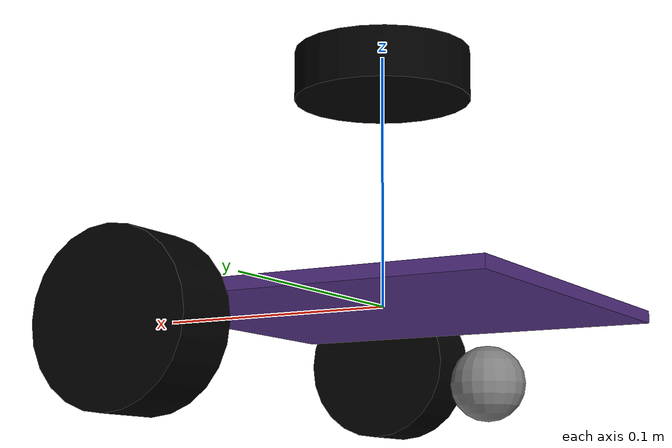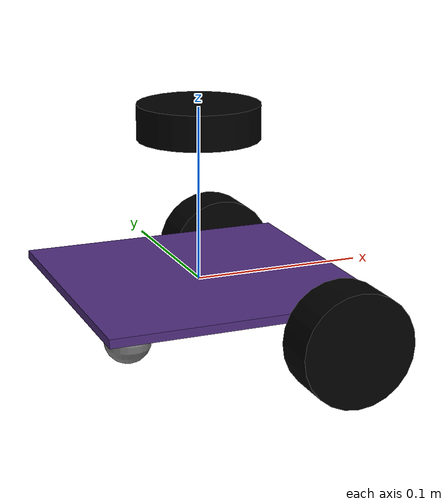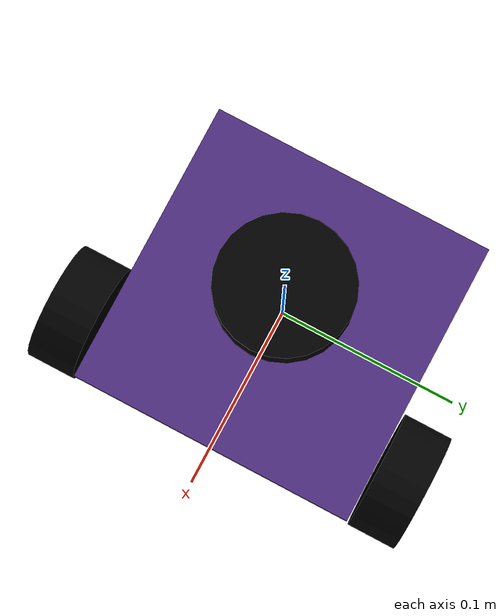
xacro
<?xml version="1.0"?>
<robot xmlns:xacro="http://www.ros.org/wiki/xacro" name="homeplater">
    <material name="black">
        <color rgba="0 0 0 1"/>
    </material>
    <material name="purple">
        <color rgba="0.3098 0.1765 0.4980 1" />
    </material>
    <material name="gray">
        <color rgba="0.5 0.5 0.5 1" />
    </material>

    <!-- base properties -->
    <xacro:property name="base_depth" value="0.16" />
    <xacro:property name="base_width" value="0.16" />
    <xacro:property name="base_height" value="0.005" />
    <xacro:property name="base_mass" value="0.2" />
    <!-- wheel properties -->
    <xacro:property name="wheel_xoffset" value="0.048" />
    <xacro:property name="wheel_yoffset" value="0.095" />
    <xacro:property name="wheel_zoffset" value="-0.013" />
    <xacro:property name="wheel_radius" value="0.0325" />
    <xacro:property name="wheel_width" value="0.027" />
    <xacro:property name="wheel_mass" value="0.032" />
    <!-- caster properties -->
    <xacro:property name="caster_xoffset" value="-0.044" />
    <xacro:property name="caster_radius" value="0.014" />
    <xacro:property name="caster_mass" value="0.05" />
    <!-- lidar properties -->
    <xacro:property name="lidar_radius" value="0.035" />
    <xacro:property name="lidar_height" value="0.02" />
    <xacro:property name="lidar_zoff" value="0.08" />
    <xacro:property name="lidar_mass" value="0.17" />

    <!-- inertial macro -->
    <xacro:macro name="box_inertia" params="m d w h">
        <inertial>
            <mass value="${m}" />
            <inertia ixx="${(m/12) * (h*h + w*w)}" ixy="0.0" ixz="0.0" iyy="${(m/12) * (d*d + h*h)}" iyz="0.0" izz="${(m/12) * (w*w + d*d)}" />
        </inertial>
    </xacro:macro>

    <xacro:macro name="cylinder_inertia" params="m r h">
        <inertial>
            <mass value="${m}" />
            <inertia ixx="${(m/12) * (3*r*r + h*h)}" ixy="0" ixz="0" iyy="${(m/12) * (3*r*r + h*h)}" iyz="0" izz="${(m/2) * (r*r)}" />
        </inertial>
    </xacro:macro>

    <xacro:macro name="sphere_inertia" params="m r">
        <inertial>
            <mass value="${m}" />
            <inertia ixx="${(2/5) * m * (r*r)}" ixy="0.0" ixz="0.0" iyy="${(2/5) * m * (r*r)}" iyz="0.0" izz="${(2/5) * m * (r*r)}" />
        </inertial>
    </xacro:macro>

    <!-- Wheel macro -->
    <xacro:macro name="wheel" params="prefix y_reflect">
        <joint name="${prefix}_joint" type="continuous">
            <parent link="base_link" />
            <child link="${prefix}_link" />
            <origin xyz="${wheel_xoffset} ${y_reflect*wheel_yoffset} ${wheel_zoffset}" rpy="${-pi/2} 0 0" />
            <axis xyz="0 0 1" />
        </joint>

        <link name="${prefix}_link">
            <visual>
                <geometry>
                    <cylinder radius="${wheel_radius}" length="${wheel_width}" />
                </geometry>
                <material name="black" />
            </visual>

            <collision>
                <geometry>
                    <cylinder radius="${wheel_radius}" length="${wheel_width}" />
                </geometry>
            </collision>

            <xacro:cylinder_inertia m="${wheel_mass}" r="${wheel_radius}" h="${wheel_width}" />
        </link>

        <gazebo reference="${prefix}_link">
            <material>Gazebo/Black</material>
        </gazebo>
    </xacro:macro>

    <!-- BASE -->
    <link name="base_link">
        <visual>
            <geometry>
                <box size="${base_depth} ${base_width} ${base_height}"/>
            </geometry>
            <material name="purple"/>
        </visual>

        <collision>
            <geometry>
                <box size="${base_depth} ${base_width} ${base_height}"/>
            </geometry>
        </collision>

        <xacro:box_inertia m="${base_mass}" d="${base_depth}" w="${base_width}" h="${base_height}" />
    </link>

    <gazebo reference="base_link">
        <material>Gazebo/Purple</material>
    </gazebo>

    <joint name="caster_joint" type="fixed">
        <parent link="base_link" />
        <child link="caster" />
        <origin xyz="${caster_xoffset} 0.0 ${caster_radius-wheel_radius+wheel_zoffset}" />
    </joint>

    <!-- CASTER WHEEL -->
    <link name="caster">
        <visual>
            <geometry>
                <sphere radius="${caster_radius}" />
            </geometry>
            <material name="gray" />
        </visual>

        <collision>
            <geometry>
                <sphere radius="${caster_radius}" />
            </geometry>
        </collision>

        <xacro:sphere_inertia m="${caster_mass}" r="${caster_radius}" />
    </link>

    <gazebo reference="caster">
        <mu1>0.0001</mu1>
        <mu2>0.0001</mu2>
        <material>Gazebo/Gray</material>
    </gazebo>

    <!-- LEFT AND RIGHT WHEEL -->
    <xacro:wheel prefix="left_wheel" y_reflect="1" />
    <xacro:wheel prefix="right_wheel" y_reflect="-1" />

    <gazebo>
        <plugin name="differential_drive_controller" filename="libgazebo_ros_diff_drive.so">
            <ros>
                <namespace>/homeplater</namespace>
            </ros>

            <!-- wheels -->
            <left_joint>left_wheel_joint</left_joint>
            <right_joint>right_wheel_joint</right_joint>

            <!-- kinematics -->
            <wheel_separation>0.19</wheel_separation>
            <wheel_diameter>0.065</wheel_diameter>

            <!-- tfs -->
            <publish_odom>true</publish_odom>
            <publish_odom_tf>true</publish_odom_tf>
            <publish_wheel_tf>true</publish_wheel_tf>
            <odometry_frame>odom</odometry_frame>

            <!-- limits -->
            <max_wheel_torque>20</max_wheel_torque>
            <max_acceleration>1.0</max_acceleration>

            <!-- miscs -->
            <robot_base_frame>base_link</robot_base_frame>
            <update_rate>50</update_rate>
        </plugin>
    </gazebo>

    <!-- LIDAR -->
    <joint name="lidar_joint" type="fixed">
        <parent link="base_link" />
        <child link="lidar" />
        <origin xyz="0 0 ${(base_height+lidar_height)/2+lidar_zoff}" />
    </joint>

    <link name="lidar">
        <visual>
            <geometry>
                <cylinder radius="${lidar_radius}" length="${lidar_height}" />
            </geometry>
            <material name="black" />
        </visual>

        <collision>
            <geometry>
                <cylinder radius="${lidar_radius}" length="${lidar_height}" />
            </geometry>
        </collision>

        <xacro:cylinder_inertia m="${lidar_mass}" r="${lidar_radius}" h="${lidar_height}" />

    </link>

    <gazebo reference="lidar">
        <material>Gazebo/Black</material>
        <sensor name="lidar" type="ray">
            <always_on>true</always_on>
            <visualize>true</visualize>
            <update_rate>5</update_rate>
            <ray>
                <scan>
                    <horizontal>
                        <samples>360</samples>
                        <resolution>1.000000</resolution>
                        <min_angle>0.000000</min_angle>
                        <max_angle>6.280000</max_angle>
                    </horizontal>
                </scan>
                <range>
                    <min>0.120000</min>
                    <max>6</max>
                    <resolution>0.015000</resolution>
                </range>
                <noise>
                    <type>gaussian</type>
                    <mean>0.0</mean>
                    <stddev>0.01</stddev>
                </noise>
            </ray>
            <plugin name="scan" filename="libgazebo_ros_ray_sensor.so">
                <ros>
                    <remapping>~/out:=scan</remapping>
                </ros>
                <output_type>sensor_msgs/LaserScan</output_type>
                <frame_name>lidar</frame_name>
            </plugin>
        </sensor>
    </gazebo>

</robot>
